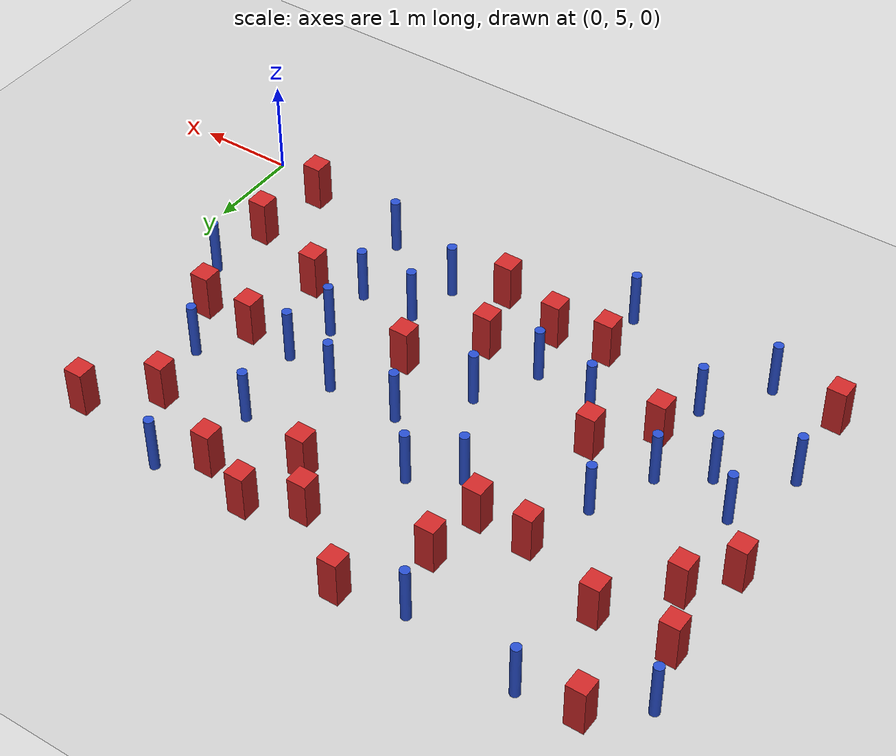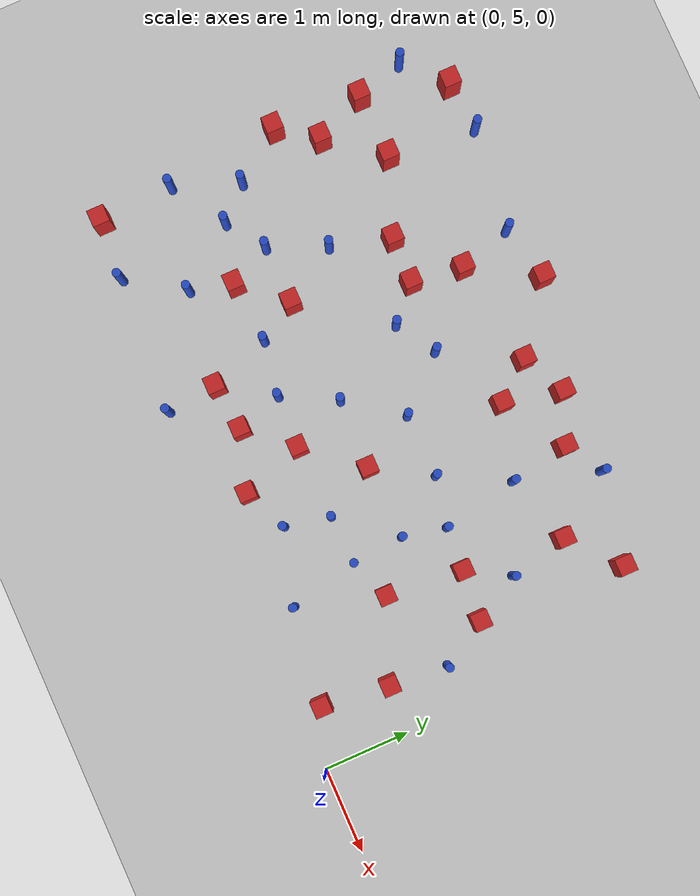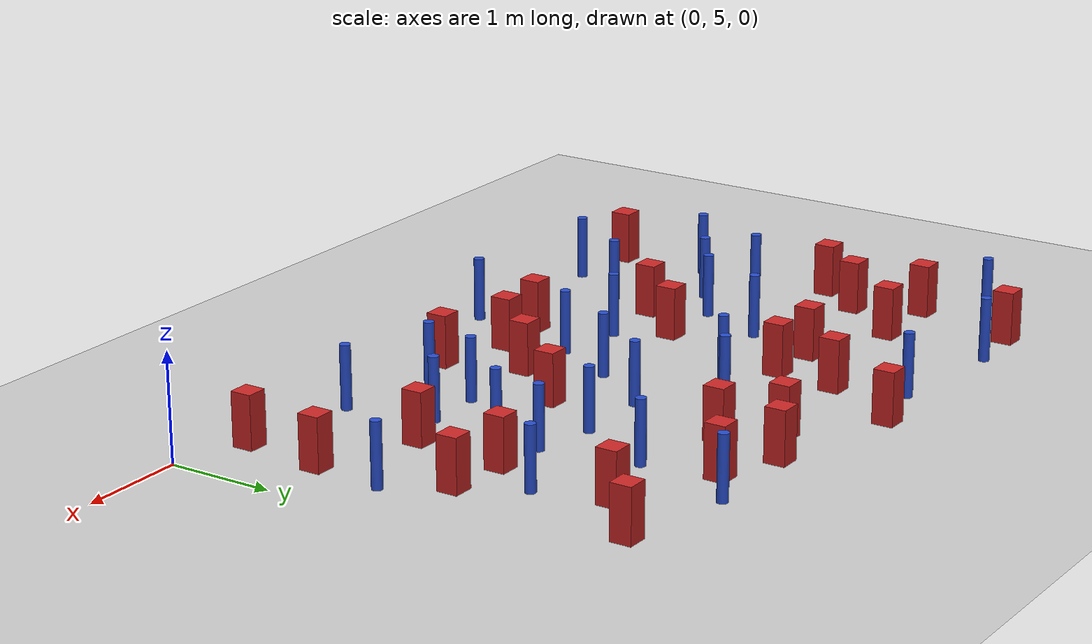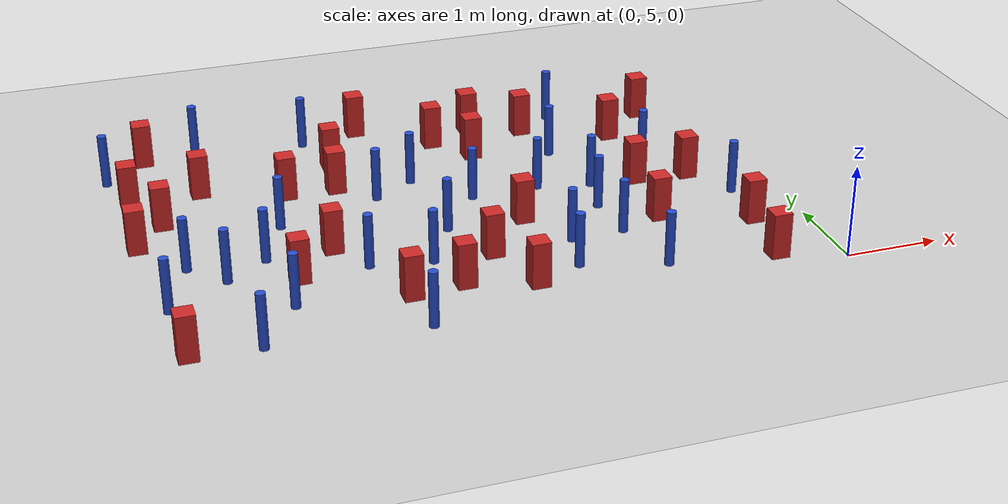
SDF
<sdf version="1.6">
 <world name="default">
  <model name="ground_plane">
   <static>1</static>
   <link name="link">
    <collision name="collision">
     <geometry><plane><normal>0 0 1</normal><size>100 100</size></plane></geometry>
     <surface><friction><ode><mu>100</mu><mu2>50</mu2></ode></friction></surface>
    </collision>
    <visual name="visual">
     <cast_shadows>0</cast_shadows>
     <geometry><plane><normal>0 0 1</normal><size>100 100</size></plane></geometry>
     <material>
      <ambient>1.0 1.0 1.0 1.0</ambient>
      <diffuse>0.8 0.8 0.8 1.0</diffuse>
      <specular>0.01 0.01 0.01 1.000000</specular>
     </material>
    </visual>
   </link>
  </model>
  <model name="square_post_obstacle1">
   <static>true</static>
   <pose>-4.43478799256 5.60635360272 -6.11067671241e-07 -5.50515727128e-06 -8.79689657224e-07 2.37013304536e-05</pose>
   <link name="link">
    <pose>0 0 0.25 0 -0 0</pose>
    <inertial>
     <mass>100</mass>
     <inertia>
      <ixx>0.166667</ixx>
      <ixy>0</ixy>
      <ixz>0</ixz>
      <iyy>0.166667</iyy>
      <iyz>0</iyz>
      <izz>0.166667</izz>
     </inertia>
    </inertial>
    <collision name="collision"><geometry><box><size>.2 .2 .5</size></box></geometry></collision>
    <visual name="visual">
     <geometry><box><size>.2 .2 .5</size></box></geometry>
     <material>
      <script><name>Gazebo/Red</name><uri>file://media/materials/scripts/gazebo.material</uri></script>
     </material>
    </visual>
   </link>
  </model>
  <model name="square_post_obstacle12">
   <static>true</static>
   <pose>-6.0545264636 8.45145739895 -6.11067671241e-07 -5.50515727128e-06 -8.79689657224e-07 2.37013304536e-05</pose>
   <link name="link">
    <pose>0 0 0.25 0 -0 0</pose>
    <inertial>
     <mass>100</mass>
     <inertia>
      <ixx>0.166667</ixx>
      <ixy>0</ixy>
      <ixz>0</ixz>
      <iyy>0.166667</iyy>
      <iyz>0</iyz>
      <izz>0.166667</izz>
     </inertia>
    </inertial>
    <collision name="collision"><geometry><box><size>.2 .2 .5</size></box></geometry></collision>
    <visual name="visual">
     <geometry><box><size>.2 .2 .5</size></box></geometry>
     <material>
      <script><name>Gazebo/Red</name><uri>file://media/materials/scripts/gazebo.material</uri></script>
     </material>
    </visual>
   </link>
  </model>
  <model name="square_post_obstacle14">
   <static>true</static>
   <pose>-0.742302265317 8.96026885137 -6.11067671241e-07 -5.50515727128e-06 -8.79689657224e-07 2.37013304536e-05</pose>
   <link name="link">
    <pose>0 0 0.25 0 -0 0</pose>
    <inertial>
     <mass>100</mass>
     <inertia>
      <ixx>0.166667</ixx>
      <ixy>0</ixy>
      <ixz>0</ixz>
      <iyy>0.166667</iyy>
      <iyz>0</iyz>
      <izz>0.166667</izz>
     </inertia>
    </inertial>
    <collision name="collision"><geometry><box><size>.2 .2 .5</size></box></geometry></collision>
    <visual name="visual">
     <geometry><box><size>.2 .2 .5</size></box></geometry>
     <material>
      <script><name>Gazebo/Red</name><uri>file://media/materials/scripts/gazebo.material</uri></script>
     </material>
    </visual>
   </link>
  </model>
  <model name="pole_obstacle9">
   <static>true</static>
   <pose>-6.44895518481 6.81430109673 -9.47619616065e-06 5.49618799737e-07 2.36310414037e-07 -1.55090534814e-07</pose>
   <link name="link">
    <pose>0 0 0.3 0 -0 0</pose>
    <inertial>
     <mass>1</mass>
     <inertia><ixx>0.145833</ixx><ixy>0</ixy><ixz>0</ixz><iyy>0.145833</iyy><iyz>0</iyz><izz>0.125</izz></inertia>
    </inertial>
    <collision name="collision">
     <geometry><cylinder><radius>0.05</radius><length>.6</length></cylinder></geometry>
    </collision>
    <visual name="visual">
     <geometry><cylinder><radius>0.05</radius><length>.6</length></cylinder></geometry>
     <material>
      <script><name>Gazebo/Blue</name><uri>file://media/materials/scripts/gazebo.material</uri></script>
     </material>
    </visual>
   </link>
  </model>
  <model name="pole_obstacle18">
   <static>true</static>
   <pose>-5.98969069954 5.11843332999 -9.47619616065e-06 5.49618799737e-07 2.36310414037e-07 -1.55090534814e-07</pose>
   <link name="link">
    <pose>0 0 0.3 0 -0 0</pose>
    <inertial>
     <mass>1</mass>
     <inertia><ixx>0.145833</ixx><ixy>0</ixy><ixz>0</ixz><iyy>0.145833</iyy><iyz>0</iyz><izz>0.125</izz></inertia>
    </inertial>
    <collision name="collision">
     <geometry><cylinder><radius>0.05</radius><length>.6</length></cylinder></geometry>
    </collision>
    <visual name="visual">
     <geometry><cylinder><radius>0.05</radius><length>.6</length></cylinder></geometry>
     <material>
      <script><name>Gazebo/Blue</name><uri>file://media/materials/scripts/gazebo.material</uri></script>
     </material>
    </visual>
   </link>
  </model>
  <model name="square_post_obstacle32">
   <static>true</static>
   <pose>-5.16478531638 8.11404601556 -6.11067671241e-07 -5.50515727128e-06 -8.79689657224e-07 2.37013304536e-05</pose>
   <link name="link">
    <pose>0 0 0.25 0 -0 0</pose>
    <inertial>
     <mass>100</mass>
     <inertia>
      <ixx>0.166667</ixx>
      <ixy>0</ixy>
      <ixz>0</ixz>
      <iyy>0.166667</iyy>
      <iyz>0</iyz>
      <izz>0.166667</izz>
     </inertia>
    </inertial>
    <collision name="collision"><geometry><box><size>.2 .2 .5</size></box></geometry></collision>
    <visual name="visual">
     <geometry><box><size>.2 .2 .5</size></box></geometry>
     <material>
      <script><name>Gazebo/Red</name><uri>file://media/materials/scripts/gazebo.material</uri></script>
     </material>
    </visual>
   </link>
  </model>
  <model name="pole_obstacle30">
   <static>true</static>
   <pose>-4.7310915244 9.33867803937 -9.47619616065e-06 5.49618799737e-07 2.36310414065e-07 -1.55090534796e-07</pose>
   <link name="link">
    <pose>0 0 0.3 0 -0 0</pose>
    <inertial>
     <mass>1</mass>
     <inertia><ixx>0.145833</ixx><ixy>0</ixy><ixz>0</ixz><iyy>0.145833</iyy><iyz>0</iyz><izz>0.125</izz></inertia>
    </inertial>
    <collision name="collision">
     <geometry><cylinder><radius>0.05</radius><length>.6</length></cylinder></geometry>
    </collision>
    <visual name="visual">
     <geometry><cylinder><radius>0.05</radius><length>.6</length></cylinder></geometry>
     <material>
      <script><name>Gazebo/Blue</name><uri>file://media/materials/scripts/gazebo.material</uri></script>
     </material>
    </visual>
   </link>
  </model>
  <model name="pole_obstacle43">
   <static>true</static>
   <pose>-0.511405981008 6.71954454775 -9.47619616065e-06 5.49618799737e-07 2.36310414069e-07 -1.55090534794e-07</pose>
   <link name="link">
    <pose>0 0 0.3 0 -0 0</pose>
    <inertial>
     <mass>1</mass>
     <inertia><ixx>0.145833</ixx><ixy>0</ixy><ixz>0</ixz><iyy>0.145833</iyy><iyz>0</iyz><izz>0.125</izz></inertia>
    </inertial>
    <collision name="collision">
     <geometry><cylinder><radius>0.05</radius><length>.6</length></cylinder></geometry>
    </collision>
    <visual name="visual">
     <geometry><cylinder><radius>0.05</radius><length>.6</length></cylinder></geometry>
     <material>
      <script><name>Gazebo/Blue</name><uri>file://media/materials/scripts/gazebo.material</uri></script>
     </material>
    </visual>
   </link>
  </model>
  <model name="square_post_obstacle46">
   <static>true</static>
   <pose>-3.42905283456 6.17475066229 -6.11067671241e-07 -5.50515727128e-06 -8.79689657224e-07 2.37013304536e-05</pose>
   <link name="link">
    <pose>0 0 0.25 0 -0 0</pose>
    <inertial>
     <mass>100</mass>
     <inertia>
      <ixx>0.166667</ixx>
      <ixy>0</ixy>
      <ixz>0</ixz>
      <iyy>0.166667</iyy>
      <iyz>0</iyz>
      <izz>0.166667</izz>
     </inertia>
    </inertial>
    <collision name="collision"><geometry><box><size>.2 .2 .5</size></box></geometry></collision>
    <visual name="visual">
     <geometry><box><size>.2 .2 .5</size></box></geometry>
     <material>
      <script><name>Gazebo/Red</name><uri>file://media/materials/scripts/gazebo.material</uri></script>
     </material>
    </visual>
   </link>
  </model>
  <model name="pole_obstacle46">
   <static>true</static>
   <pose>-4.38601492608 5.00733480028 -9.47619616065e-06 5.49618799737e-07 2.36310414037e-07 -1.55090534814e-07</pose>
   <link name="link">
    <pose>0 0 0.3 0 -0 0</pose>
    <inertial>
     <mass>1</mass>
     <inertia><ixx>0.145833</ixx><ixy>0</ixy><ixz>0</ixz><iyy>0.145833</iyy><iyz>0</iyz><izz>0.125</izz></inertia>
    </inertial>
    <collision name="collision">
     <geometry><cylinder><radius>0.05</radius><length>.6</length></cylinder></geometry>
    </collision>
    <visual name="visual">
     <geometry><cylinder><radius>0.05</radius><length>.6</length></cylinder></geometry>
     <material>
      <script><name>Gazebo/Blue</name><uri>file://media/materials/scripts/gazebo.material</uri></script>
     </material>
    </visual>
   </link>
  </model>
  <model name="square_post_obstacle51">
   <static>true</static>
   <pose>-2.89981858298 6.79808342777 -6.11067671241e-07 -5.50515727128e-06 -8.79689657224e-07 2.37013304536e-05</pose>
   <link name="link">
    <pose>0 0 0.25 0 -0 0</pose>
    <inertial>
     <mass>100</mass>
     <inertia>
      <ixx>0.166667</ixx>
      <ixy>0</ixy>
      <ixz>0</ixz>
      <iyy>0.166667</iyy>
      <iyz>0</iyz>
      <izz>0.166667</izz>
     </inertia>
    </inertial>
    <collision name="collision"><geometry><box><size>.2 .2 .5</size></box></geometry></collision>
    <visual name="visual">
     <geometry><box><size>.2 .2 .5</size></box></geometry>
     <material>
      <script><name>Gazebo/Red</name><uri>file://media/materials/scripts/gazebo.material</uri></script>
     </material>
    </visual>
   </link>
  </model>
  <model name="pole_obstacle56">
   <static>true</static>
   <pose>-3.25328708023 7.44785954091 -9.4761961606e-06 5.49618799729e-07 2.36310414006e-07 -1.55090534822e-07</pose>
   <link name="link">
    <pose>0 0 0.3 0 -0 0</pose>
    <inertial>
     <mass>1</mass>
     <inertia><ixx>0.145833</ixx><ixy>0</ixy><ixz>0</ixz><iyy>0.145833</iyy><iyz>0</iyz><izz>0.125</izz></inertia>
    </inertial>
    <collision name="collision">
     <geometry><cylinder><radius>0.05</radius><length>.6</length></cylinder></geometry>
    </collision>
    <visual name="visual">
     <geometry><cylinder><radius>0.05</radius><length>.6</length></cylinder></geometry>
     <material>
      <script><name>Gazebo/Blue</name><uri>file://media/materials/scripts/gazebo.material</uri></script>
     </material>
    </visual>
   </link>
  </model>
  <model name="pole_obstacle57">
   <static>true</static>
   <pose>-6.09919513137 6.45370293949 -9.47619616065e-06 5.49618799737e-07 2.36310414037e-07 -1.55090534814e-07</pose>
   <link name="link">
    <pose>0 0 0.3 0 -0 0</pose>
    <inertial>
     <mass>1</mass>
     <inertia><ixx>0.145833</ixx><ixy>0</ixy><ixz>0</ixz><iyy>0.145833</iyy><iyz>0</iyz><izz>0.125</izz></inertia>
    </inertial>
    <collision name="collision">
     <geometry><cylinder><radius>0.05</radius><length>.6</length></cylinder></geometry>
    </collision>
    <visual name="visual">
     <geometry><cylinder><radius>0.05</radius><length>.6</length></cylinder></geometry>
     <material>
      <script><name>Gazebo/Blue</name><uri>file://media/materials/scripts/gazebo.material</uri></script>
     </material>
    </visual>
   </link>
  </model>
  <model name="pole_obstacle63">
   <static>true</static>
   <pose>-2.56056381155 6.20164306159 -9.47619616065e-06 5.49618799738e-07 2.3631041406e-07 -1.55090534801e-07</pose>
   <link name="link">
    <pose>0 0 0.3 0 -0 0</pose>
    <inertial>
     <mass>1</mass>
     <inertia><ixx>0.145833</ixx><ixy>0</ixy><ixz>0</ixz><iyy>0.145833</iyy><iyz>0</iyz><izz>0.125</izz></inertia>
    </inertial>
    <collision name="collision">
     <geometry><cylinder><radius>0.05</radius><length>.6</length></cylinder></geometry>
    </collision>
    <visual name="visual">
     <geometry><cylinder><radius>0.05</radius><length>.6</length></cylinder></geometry>
     <material>
      <script><name>Gazebo/Blue</name><uri>file://media/materials/scripts/gazebo.material</uri></script>
     </material>
    </visual>
   </link>
  </model>
  <model name="pole_obstacle64">
   <static>true</static>
   <pose>-2.67398971827 5.67075251357 -9.47619616065e-06 5.49618799738e-07 2.3631041406e-07 -1.55090534801e-07</pose>
   <link name="link">
    <pose>0 0 0.3 0 -0 0</pose>
    <inertial>
     <mass>1</mass>
     <inertia><ixx>0.145833</ixx><ixy>0</ixy><ixz>0</ixz><iyy>0.145833</iyy><iyz>0</iyz><izz>0.125</izz></inertia>
    </inertial>
    <collision name="collision">
     <geometry><cylinder><radius>0.05</radius><length>.6</length></cylinder></geometry>
    </collision>
    <visual name="visual">
     <geometry><cylinder><radius>0.05</radius><length>.6</length></cylinder></geometry>
     <material>
      <script><name>Gazebo/Blue</name><uri>file://media/materials/scripts/gazebo.material</uri></script>
     </material>
    </visual>
   </link>
  </model>
  <model name="pole_obstacle66">
   <static>true</static>
   <pose>-1.80396668844 5.4139811328 -9.47619616065e-06 5.49618799737e-07 2.36310414061e-07 -1.550905348e-07</pose>
   <link name="link">
    <pose>0 0 0.3 0 -0 0</pose>
    <inertial>
     <mass>1</mass>
     <inertia><ixx>0.145833</ixx><ixy>0</ixy><ixz>0</ixz><iyy>0.145833</iyy><iyz>0</iyz><izz>0.125</izz></inertia>
    </inertial>
    <collision name="collision">
     <geometry><cylinder><radius>0.05</radius><length>.6</length></cylinder></geometry>
    </collision>
    <visual name="visual">
     <geometry><cylinder><radius>0.05</radius><length>.6</length></cylinder></geometry>
     <material>
      <script><name>Gazebo/Blue</name><uri>file://media/materials/scripts/gazebo.material</uri></script>
     </material>
    </visual>
   </link>
  </model>
  <model name="pole_obstacle67">
   <static>true</static>
   <pose>-6.73562619671 6.05208099698 -9.47619616065e-06 5.49618799737e-07 2.36310414037e-07 -1.55090534814e-07</pose>
   <link name="link">
    <pose>0 0 0.3 0 -0 0</pose>
    <inertial>
     <mass>1</mass>
     <inertia><ixx>0.145833</ixx><ixy>0</ixy><ixz>0</ixz><iyy>0.145833</iyy><iyz>0</iyz><izz>0.125</izz></inertia>
    </inertial>
    <collision name="collision">
     <geometry><cylinder><radius>0.05</radius><length>.6</length></cylinder></geometry>
    </collision>
    <visual name="visual">
     <geometry><cylinder><radius>0.05</radius><length>.6</length></cylinder></geometry>
     <material>
      <script><name>Gazebo/Blue</name><uri>file://media/materials/scripts/gazebo.material</uri></script>
     </material>
    </visual>
   </link>
  </model>
  <model name="square_post_obstacle75">
   <static>true</static>
   <pose>-2.80260850887 9.14973458944 -6.11067671241e-07 -5.50515727128e-06 -8.79689657224e-07 2.37013304536e-05</pose>
   <link name="link">
    <pose>0 0 0.25 0 -0 0</pose>
    <inertial>
     <mass>100</mass>
     <inertia>
      <ixx>0.166667</ixx>
      <ixy>0</ixy>
      <ixz>0</ixz>
      <iyy>0.166667</iyy>
      <iyz>0</iyz>
      <izz>0.166667</izz>
     </inertia>
    </inertial>
    <collision name="collision"><geometry><box><size>.2 .2 .5</size></box></geometry></collision>
    <visual name="visual">
     <geometry><box><size>.2 .2 .5</size></box></geometry>
     <material>
      <script><name>Gazebo/Red</name><uri>file://media/materials/scripts/gazebo.material</uri></script>
     </material>
    </visual>
   </link>
  </model>
  <model name="square_post_obstacle77">
   <static>true</static>
   <pose>-5.40919212482 6.26537233215 -6.11067671241e-07 -5.50515727128e-06 -8.79689657224e-07 2.37013304536e-05</pose>
   <link name="link">
    <pose>0 0 0.25 0 -0 0</pose>
    <inertial>
     <mass>100</mass>
     <inertia>
      <ixx>0.166667</ixx>
      <ixy>0</ixy>
      <ixz>0</ixz>
      <iyy>0.166667</iyy>
      <iyz>0</iyz>
      <izz>0.166667</izz>
     </inertia>
    </inertial>
    <collision name="collision"><geometry><box><size>.2 .2 .5</size></box></geometry></collision>
    <visual name="visual">
     <geometry><box><size>.2 .2 .5</size></box></geometry>
     <material>
      <script><name>Gazebo/Red</name><uri>file://media/materials/scripts/gazebo.material</uri></script>
     </material>
    </visual>
   </link>
  </model>
  <model name="pole_obstacle83">
   <static>true</static>
   <pose>-4.68876361041 6.31352791029 -9.47619616065e-06 5.49618799737e-07 2.36310414037e-07 -1.55090534814e-07</pose>
   <link name="link">
    <pose>0 0 0.3 0 -0 0</pose>
    <inertial>
     <mass>1</mass>
     <inertia><ixx>0.145833</ixx><ixy>0</ixy><ixz>0</ixz><iyy>0.145833</iyy><iyz>0</iyz><izz>0.125</izz></inertia>
    </inertial>
    <collision name="collision">
     <geometry><cylinder><radius>0.05</radius><length>.6</length></cylinder></geometry>
    </collision>
    <visual name="visual">
     <geometry><cylinder><radius>0.05</radius><length>.6</length></cylinder></geometry>
     <material>
      <script><name>Gazebo/Blue</name><uri>file://media/materials/scripts/gazebo.material</uri></script>
     </material>
    </visual>
   </link>
  </model>
  <model name="pole_obstacle85">
   <static>true</static>
   <pose>-3.71606671292 6.82683311649 -9.47619616065e-06 5.49618799738e-07 2.3631041406e-07 -1.55090534801e-07</pose>
   <link name="link">
    <pose>0 0 0.3 0 -0 0</pose>
    <inertial>
     <mass>1</mass>
     <inertia><ixx>0.145833</ixx><ixy>0</ixy><ixz>0</ixz><iyy>0.145833</iyy><iyz>0</iyz><izz>0.125</izz></inertia>
    </inertial>
    <collision name="collision">
     <geometry><cylinder><radius>0.05</radius><length>.6</length></cylinder></geometry>
    </collision>
    <visual name="visual">
     <geometry><cylinder><radius>0.05</radius><length>.6</length></cylinder></geometry>
     <material>
      <script><name>Gazebo/Blue</name><uri>file://media/materials/scripts/gazebo.material</uri></script>
     </material>
    </visual>
   </link>
  </model>
  <model name="square_post_obstacle82">
   <static>true</static>
   <pose>-3.18641721964 5.44880730583 -6.11067671241e-07 -5.50515727128e-06 -8.79689657224e-07 2.37013304536e-05</pose>
   <link name="link">
    <pose>0 0 0.25 0 -0 0</pose>
    <inertial>
     <mass>100</mass>
     <inertia>
      <ixx>0.166667</ixx>
      <ixy>0</ixy>
      <ixz>0</ixz>
      <iyy>0.166667</iyy>
      <iyz>0</iyz>
      <izz>0.166667</izz>
     </inertia>
    </inertial>
    <collision name="collision"><geometry><box><size>.2 .2 .5</size></box></geometry></collision>
    <visual name="visual">
     <geometry><box><size>.2 .2 .5</size></box></geometry>
     <material>
      <script><name>Gazebo/Red</name><uri>file://media/materials/scripts/gazebo.material</uri></script>
     </material>
    </visual>
   </link>
  </model>
  <model name="pole_obstacle99">
   <static>true</static>
   <pose>-2.5056821882 7.46534544408 -9.47619616065e-06 5.49618799738e-07 2.3631041406e-07 -1.55090534801e-07</pose>
   <link name="link">
    <pose>0 0 0.3 0 -0 0</pose>
    <inertial>
     <mass>1</mass>
     <inertia><ixx>0.145833</ixx><ixy>0</ixy><ixz>0</ixz><iyy>0.145833</iyy><iyz>0</iyz><izz>0.125</izz></inertia>
    </inertial>
    <collision name="collision">
     <geometry><cylinder><radius>0.05</radius><length>.6</length></cylinder></geometry>
    </collision>
    <visual name="visual">
     <geometry><cylinder><radius>0.05</radius><length>.6</length></cylinder></geometry>
     <material>
      <script><name>Gazebo/Blue</name><uri>file://media/materials/scripts/gazebo.material</uri></script>
     </material>
    </visual>
   </link>
  </model>
  <model name="pole_obstacle103">
   <static>true</static>
   <pose>-5.9457717845 9.49427658453 -9.47619616065e-06 5.49618799737e-07 2.36310414065e-07 -1.55090534796e-07</pose>
   <link name="link">
    <pose>0 0 0.3 0 -0 0</pose>
    <inertial>
     <mass>1</mass>
     <inertia><ixx>0.145833</ixx><ixy>0</ixy><ixz>0</ixz><iyy>0.145833</iyy><iyz>0</iyz><izz>0.125</izz></inertia>
    </inertial>
    <collision name="collision">
     <geometry><cylinder><radius>0.05</radius><length>.6</length></cylinder></geometry>
    </collision>
    <visual name="visual">
     <geometry><cylinder><radius>0.05</radius><length>.6</length></cylinder></geometry>
     <material>
      <script><name>Gazebo/Blue</name><uri>file://media/materials/scripts/gazebo.material</uri></script>
     </material>
    </visual>
   </link>
  </model>
  <model name="square_post_obstacle92">
   <static>true</static>
   <pose>-3.31038383051 8.90282828501 -6.11067671241e-07 -5.50515727128e-06 -8.79689657224e-07 2.37013304536e-05</pose>
   <link name="link">
    <pose>0 0 0.25 0 -0 0</pose>
    <inertial>
     <mass>100</mass>
     <inertia>
      <ixx>0.166667</ixx>
      <ixy>0</ixy>
      <ixz>0</ixz>
      <iyy>0.166667</iyy>
      <iyz>0</iyz>
      <izz>0.166667</izz>
     </inertia>
    </inertial>
    <collision name="collision"><geometry><box><size>.2 .2 .5</size></box></geometry></collision>
    <visual name="visual">
     <geometry><box><size>.2 .2 .5</size></box></geometry>
     <material>
      <script><name>Gazebo/Red</name><uri>file://media/materials/scripts/gazebo.material</uri></script>
     </material>
    </visual>
   </link>
  </model>
  <model name="square_post_obstacle94">
   <static>true</static>
   <pose>-2.22548112345 8.91783704091 -6.11067671241e-07 -5.50515727128e-06 -8.79689657224e-07 2.37013304536e-05</pose>
   <link name="link">
    <pose>0 0 0.25 0 -0 0</pose>
    <inertial>
     <mass>100</mass>
     <inertia>
      <ixx>0.166667</ixx>
      <ixy>0</ixy>
      <ixz>0</ixz>
      <iyy>0.166667</iyy>
      <iyz>0</iyz>
      <izz>0.166667</izz>
     </inertia>
    </inertial>
    <collision name="collision"><geometry><box><size>.2 .2 .5</size></box></geometry></collision>
    <visual name="visual">
     <geometry><box><size>.2 .2 .5</size></box></geometry>
     <material>
      <script><name>Gazebo/Red</name><uri>file://media/materials/scripts/gazebo.material</uri></script>
     </material>
    </visual>
   </link>
  </model>
  <model name="square_post_obstacle100">
   <static>true</static>
   <pose>-4.54385470908 8.70519966103 -6.11067671241e-07 -5.50515727128e-06 -8.79689657224e-07 2.37013304536e-05</pose>
   <link name="link">
    <pose>0 0 0.25 0 -0 0</pose>
    <inertial>
     <mass>100</mass>
     <inertia>
      <ixx>0.166667</ixx>
      <ixy>0</ixy>
      <ixz>0</ixz>
      <iyy>0.166667</iyy>
      <iyz>0</iyz>
      <izz>0.166667</izz>
     </inertia>
    </inertial>
    <collision name="collision"><geometry><box><size>.2 .2 .5</size></box></geometry></collision>
    <visual name="visual">
     <geometry><box><size>.2 .2 .5</size></box></geometry>
     <material>
      <script><name>Gazebo/Red</name><uri>file://media/materials/scripts/gazebo.material</uri></script>
     </material>
    </visual>
   </link>
  </model>
  <model name="pole_obstacle116">
   <static>true</static>
   <pose>-2.03106829639 6.83432647824 -9.47619616065e-06 5.49618799737e-07 2.36310414067e-07 -1.55090534796e-07</pose>
   <link name="link">
    <pose>0 0 0.3 0 -0 0</pose>
    <inertial>
     <mass>1</mass>
     <inertia><ixx>0.145833</ixx><ixy>0</ixy><ixz>0</ixz><iyy>0.145833</iyy><iyz>0</iyz><izz>0.125</izz></inertia>
    </inertial>
    <collision name="collision">
     <geometry><cylinder><radius>0.05</radius><length>.6</length></cylinder></geometry>
    </collision>
    <visual name="visual">
     <geometry><cylinder><radius>0.05</radius><length>.6</length></cylinder></geometry>
     <material>
      <script><name>Gazebo/Blue</name><uri>file://media/materials/scripts/gazebo.material</uri></script>
     </material>
    </visual>
   </link>
  </model>
  <model name="pole_obstacle118">
   <static>true</static>
   <pose>-3.79311296094 8.03465573996 -9.47619616065e-06 5.49618799737e-07 2.36310414075e-07 -1.55090534792e-07</pose>
   <link name="link">
    <pose>0 0 0.3 0 -0 0</pose>
    <inertial>
     <mass>1</mass>
     <inertia><ixx>0.145833</ixx><ixy>0</ixy><ixz>0</ixz><iyy>0.145833</iyy><iyz>0</iyz><izz>0.125</izz></inertia>
    </inertial>
    <collision name="collision">
     <geometry><cylinder><radius>0.05</radius><length>.6</length></cylinder></geometry>
    </collision>
    <visual name="visual">
     <geometry><cylinder><radius>0.05</radius><length>.6</length></cylinder></geometry>
     <material>
      <script><name>Gazebo/Blue</name><uri>file://media/materials/scripts/gazebo.material</uri></script>
     </material>
    </visual>
   </link>
  </model>
  <model name="pole_obstacle120">
   <static>true</static>
   <pose>-5.37259853072 7.41952004419 -9.47619616065e-06 5.49618799737e-07 2.36310414037e-07 -1.55090534814e-07</pose>
   <link name="link">
    <pose>0 0 0.3 0 -0 0</pose>
    <inertial>
     <mass>1</mass>
     <inertia><ixx>0.145833</ixx><ixy>0</ixy><ixz>0</ixz><iyy>0.145833</iyy><iyz>0</iyz><izz>0.125</izz></inertia>
    </inertial>
    <collision name="collision">
     <geometry><cylinder><radius>0.05</radius><length>.6</length></cylinder></geometry>
    </collision>
    <visual name="visual">
     <geometry><cylinder><radius>0.05</radius><length>.6</length></cylinder></geometry>
     <material>
      <script><name>Gazebo/Blue</name><uri>file://media/materials/scripts/gazebo.material</uri></script>
     </material>
    </visual>
   </link>
  </model>
  <model name="pole_obstacle123">
   <static>true</static>
   <pose>-4.04515758894 6.20432769611 -9.47619616065e-06 5.49618799737e-07 2.36310414031e-07 -1.55090534817e-07</pose>
   <link name="link">
    <pose>0 0 0.3 0 -0 0</pose>
    <inertial>
     <mass>1</mass>
     <inertia><ixx>0.145833</ixx><ixy>0</ixy><ixz>0</ixz><iyy>0.145833</iyy><iyz>0</iyz><izz>0.125</izz></inertia>
    </inertial>
    <collision name="collision">
     <geometry><cylinder><radius>0.05</radius><length>.6</length></cylinder></geometry>
    </collision>
    <visual name="visual">
     <geometry><cylinder><radius>0.05</radius><length>.6</length></cylinder></geometry>
     <material>
      <script><name>Gazebo/Blue</name><uri>file://media/materials/scripts/gazebo.material</uri></script>
     </material>
    </visual>
   </link>
  </model>
  <model name="pole_obstacle130">
   <static>true</static>
   <pose>-5.55603551851 5.76548208867 -9.47619616065e-06 5.49618799737e-07 2.36310414037e-07 -1.55090534814e-07</pose>
   <link name="link">
    <pose>0 0 0.3 0 -0 0</pose>
    <inertial>
     <mass>1</mass>
     <inertia><ixx>0.145833</ixx><ixy>0</ixy><ixz>0</ixz><iyy>0.145833</iyy><iyz>0</iyz><izz>0.125</izz></inertia>
    </inertial>
    <collision name="collision">
     <geometry><cylinder><radius>0.05</radius><length>.6</length></cylinder></geometry>
    </collision>
    <visual name="visual">
     <geometry><cylinder><radius>0.05</radius><length>.6</length></cylinder></geometry>
     <material>
      <script><name>Gazebo/Blue</name><uri>file://media/materials/scripts/gazebo.material</uri></script>
     </material>
    </visual>
   </link>
  </model>
  <model name="pole_obstacle136">
   <static>true</static>
   <pose>-1.80038776176 9.19298654984 -9.47619616065e-06 5.49618799737e-07 2.36310414046e-07 -1.55090534809e-07</pose>
   <link name="link">
    <pose>0 0 0.3 0 -0 0</pose>
    <inertial>
     <mass>1</mass>
     <inertia><ixx>0.145833</ixx><ixy>0</ixy><ixz>0</ixz><iyy>0.145833</iyy><iyz>0</iyz><izz>0.125</izz></inertia>
    </inertial>
    <collision name="collision">
     <geometry><cylinder><radius>0.05</radius><length>.6</length></cylinder></geometry>
    </collision>
    <visual name="visual">
     <geometry><cylinder><radius>0.05</radius><length>.6</length></cylinder></geometry>
     <material>
      <script><name>Gazebo/Blue</name><uri>file://media/materials/scripts/gazebo.material</uri></script>
     </material>
    </visual>
   </link>
  </model>
  <model name="pole_obstacle139">
   <static>true</static>
   <pose>-2.09950263512 8.23191709707 -9.4761961606e-06 5.49618799729e-07 2.36310414e-07 -1.55090534824e-07</pose>
   <link name="link">
    <pose>0 0 0.3 0 -0 0</pose>
    <inertial>
     <mass>1</mass>
     <inertia><ixx>0.145833</ixx><ixy>0</ixy><ixz>0</ixz><iyy>0.145833</iyy><iyz>0</iyz><izz>0.125</izz></inertia>
    </inertial>
    <collision name="collision">
     <geometry><cylinder><radius>0.05</radius><length>.6</length></cylinder></geometry>
    </collision>
    <visual name="visual">
     <geometry><cylinder><radius>0.05</radius><length>.6</length></cylinder></geometry>
     <material>
      <script><name>Gazebo/Blue</name><uri>file://media/materials/scripts/gazebo.material</uri></script>
     </material>
    </visual>
   </link>
  </model>
  <model name="square_post_obstacle125">
   <static>true</static>
   <pose>-4.9621671914 6.7661242826 -6.11067671241e-07 -5.50515727128e-06 -8.79689657224e-07 2.37013304536e-05</pose>
   <link name="link">
    <pose>0 0 0.25 0 -0 0</pose>
    <inertial>
     <mass>100</mass>
     <inertia>
      <ixx>0.166667</ixx>
      <ixy>0</ixy>
      <ixz>0</ixz>
      <iyy>0.166667</iyy>
      <iyz>0</iyz>
      <izz>0.166667</izz>
     </inertia>
    </inertial>
    <collision name="collision"><geometry><box><size>.2 .2 .5</size></box></geometry></collision>
    <visual name="visual">
     <geometry><box><size>.2 .2 .5</size></box></geometry>
     <material>
      <script><name>Gazebo/Red</name><uri>file://media/materials/scripts/gazebo.material</uri></script>
     </material>
    </visual>
   </link>
  </model>
  <model name="square_post_obstacle132">
   <static>true</static>
   <pose>-6.81452076863 8.43178630671 -6.11067671241e-07 -5.50515727128e-06 -8.79689657224e-07 2.37013304536e-05</pose>
   <link name="link">
    <pose>0 0 0.25 0 -0 0</pose>
    <inertial>
     <mass>100</mass>
     <inertia>
      <ixx>0.166667</ixx>
      <ixy>0</ixy>
      <ixz>0</ixz>
      <iyy>0.166667</iyy>
      <iyz>0</iyz>
      <izz>0.166667</izz>
     </inertia>
    </inertial>
    <collision name="collision"><geometry><box><size>.2 .2 .5</size></box></geometry></collision>
    <visual name="visual">
     <geometry><box><size>.2 .2 .5</size></box></geometry>
     <material>
      <script><name>Gazebo/Red</name><uri>file://media/materials/scripts/gazebo.material</uri></script>
     </material>
    </visual>
   </link>
  </model>
  <model name="square_post_obstacle139">
   <static>true</static>
   <pose>-0.83256341877 7.24919146022 -6.11067671241e-07 -5.50515727128e-06 -8.79689657224e-07 2.37013304536e-05</pose>
   <link name="link">
    <pose>0 0 0.25 0 -0 0</pose>
    <inertial>
     <mass>100</mass>
     <inertia>
      <ixx>0.166667</ixx>
      <ixy>0</ixy>
      <ixz>0</ixz>
      <iyy>0.166667</iyy>
      <iyz>0</iyz>
      <izz>0.166667</izz>
     </inertia>
    </inertial>
    <collision name="collision"><geometry><box><size>.2 .2 .5</size></box></geometry></collision>
    <visual name="visual">
     <geometry><box><size>.2 .2 .5</size></box></geometry>
     <material>
      <script><name>Gazebo/Red</name><uri>file://media/materials/scripts/gazebo.material</uri></script>
     </material>
    </visual>
   </link>
  </model>
  <model name="pole_obstacle152">
   <static>true</static>
   <pose>-1.12913950508 7.79714186715 -9.47619616065e-06 5.49618799737e-07 2.36310414061e-07 -1.550905348e-07</pose>
   <link name="link">
    <pose>0 0 0.3 0 -0 0</pose>
    <inertial>
     <mass>1</mass>
     <inertia><ixx>0.145833</ixx><ixy>0</ixy><ixz>0</ixz><iyy>0.145833</iyy><iyz>0</iyz><izz>0.125</izz></inertia>
    </inertial>
    <collision name="collision">
     <geometry><cylinder><radius>0.05</radius><length>.6</length></cylinder></geometry>
    </collision>
    <visual name="visual">
     <geometry><cylinder><radius>0.05</radius><length>.6</length></cylinder></geometry>
     <material>
      <script><name>Gazebo/Blue</name><uri>file://media/materials/scripts/gazebo.material</uri></script>
     </material>
    </visual>
   </link>
  </model>
  <model name="pole_obstacle160">
   <static>true</static>
   <pose>-5.65464309851 6.75757261515 -9.47619616065e-06 5.49618799737e-07 2.36310414037e-07 -1.55090534814e-07</pose>
   <link name="link">
    <pose>0 0 0.3 0 -0 0</pose>
    <inertial>
     <mass>1</mass>
     <inertia><ixx>0.145833</ixx><ixy>0</ixy><ixz>0</ixz><iyy>0.145833</iyy><iyz>0</iyz><izz>0.125</izz></inertia>
    </inertial>
    <collision name="collision">
     <geometry><cylinder><radius>0.05</radius><length>.6</length></cylinder></geometry>
    </collision>
    <visual name="visual">
     <geometry><cylinder><radius>0.05</radius><length>.6</length></cylinder></geometry>
     <material>
      <script><name>Gazebo/Blue</name><uri>file://media/materials/scripts/gazebo.material</uri></script>
     </material>
    </visual>
   </link>
  </model>
  <model name="square_post_obstacle160">
   <static>true</static>
   <pose>-4.62366881049 8.09767568304 -6.11067671241e-07 -5.50515727128e-06 -8.79689657224e-07 2.37013304536e-05</pose>
   <link name="link">
    <pose>0 0 0.25 0 -0 0</pose>
    <inertial>
     <mass>100</mass>
     <inertia>
      <ixx>0.166667</ixx>
      <ixy>0</ixy>
      <ixz>0</ixz>
      <iyy>0.166667</iyy>
      <iyz>0</iyz>
      <izz>0.166667</izz>
     </inertia>
    </inertial>
    <collision name="collision"><geometry><box><size>.2 .2 .5</size></box></geometry></collision>
    <visual name="visual">
     <geometry><box><size>.2 .2 .5</size></box></geometry>
     <material>
      <script><name>Gazebo/Red</name><uri>file://media/materials/scripts/gazebo.material</uri></script>
     </material>
    </visual>
   </link>
  </model>
  <model name="square_post_obstacle165">
   <static>true</static>
   <pose>-1.50845739638 6.40658729159 -6.11067671241e-07 -5.50515727128e-06 -8.79689657224e-07 2.37013304536e-05</pose>
   <link name="link">
    <pose>0 0 0.25 0 -0 0</pose>
    <inertial>
     <mass>100</mass>
     <inertia>
      <ixx>0.166667</ixx>
      <ixy>0</ixy>
      <ixz>0</ixz>
      <iyy>0.166667</iyy>
      <iyz>0</iyz>
      <izz>0.166667</izz>
     </inertia>
    </inertial>
    <collision name="collision"><geometry><box><size>.2 .2 .5</size></box></geometry></collision>
    <visual name="visual">
     <geometry><box><size>.2 .2 .5</size></box></geometry>
     <material>
      <script><name>Gazebo/Red</name><uri>file://media/materials/scripts/gazebo.material</uri></script>
     </material>
    </visual>
   </link>
  </model>
  <model name="square_post_obstacle166">
   <static>true</static>
   <pose>-0.586438119489 6.03965726481 -6.11067671241e-07 -5.50515727128e-06 -8.79689657224e-07 2.37013304536e-05</pose>
   <link name="link">
    <pose>0 0 0.25 0 -0 0</pose>
    <inertial>
     <mass>100</mass>
     <inertia>
      <ixx>0.166667</ixx>
      <ixy>0</ixy>
      <ixz>0</ixz>
      <iyy>0.166667</iyy>
      <iyz>0</iyz>
      <izz>0.166667</izz>
     </inertia>
    </inertial>
    <collision name="collision"><geometry><box><size>.2 .2 .5</size></box></geometry></collision>
    <visual name="visual">
     <geometry><box><size>.2 .2 .5</size></box></geometry>
     <material>
      <script><name>Gazebo/Red</name><uri>file://media/materials/scripts/gazebo.material</uri></script>
     </material>
    </visual>
   </link>
  </model>
  <model name="square_post_obstacle169">
   <static>true</static>
   <pose>-1.29398861735 8.47350390292 -6.11067671241e-07 -5.50515727128e-06 -8.79689657224e-07 2.37013304536e-05</pose>
   <link name="link">
    <pose>0 0 0.25 0 -0 0</pose>
    <inertial>
     <mass>100</mass>
     <inertia>
      <ixx>0.166667</ixx>
      <ixy>0</ixy>
      <ixz>0</ixz>
      <iyy>0.166667</iyy>
      <iyz>0</iyz>
      <izz>0.166667</izz>
     </inertia>
    </inertial>
    <collision name="collision"><geometry><box><size>.2 .2 .5</size></box></geometry></collision>
    <visual name="visual">
     <geometry><box><size>.2 .2 .5</size></box></geometry>
     <material>
      <script><name>Gazebo/Red</name><uri>file://media/materials/scripts/gazebo.material</uri></script>
     </material>
    </visual>
   </link>
  </model>
  <model name="square_post_obstacle178">
   <static>true</static>
   <pose>-6.68574079676 5.17872096993 -6.11067671241e-07 -5.50515727128e-06 -8.79689657224e-07 2.37013304536e-05</pose>
   <link name="link">
    <pose>0 0 0.25 0 -0 0</pose>
    <inertial>
     <mass>100</mass>
     <inertia>
      <ixx>0.166667</ixx>
      <ixy>0</ixy>
      <ixz>0</ixz>
      <iyy>0.166667</iyy>
      <iyz>0</iyz>
      <izz>0.166667</izz>
     </inertia>
    </inertial>
    <collision name="collision"><geometry><box><size>.2 .2 .5</size></box></geometry></collision>
    <visual name="visual">
     <geometry><box><size>.2 .2 .5</size></box></geometry>
     <material>
      <script><name>Gazebo/Red</name><uri>file://media/materials/scripts/gazebo.material</uri></script>
     </material>
    </visual>
   </link>
  </model>
  <model name="square_post_obstacle180">
   <static>true</static>
   <pose>-6.53593385193 9.42989527644 -6.11067671241e-07 -5.50515727128e-06 -8.79689657224e-07 2.37013304536e-05</pose>
   <link name="link">
    <pose>0 0 0.25 0 -0 0</pose>
    <inertial>
     <mass>100</mass>
     <inertia>
      <ixx>0.166667</ixx>
      <ixy>0</ixy>
      <ixz>0</ixz>
      <iyy>0.166667</iyy>
      <iyz>0</iyz>
      <izz>0.166667</izz>
     </inertia>
    </inertial>
    <collision name="collision"><geometry><box><size>.2 .2 .5</size></box></geometry></collision>
    <visual name="visual">
     <geometry><box><size>.2 .2 .5</size></box></geometry>
     <material>
      <script><name>Gazebo/Red</name><uri>file://media/materials/scripts/gazebo.material</uri></script>
     </material>
    </visual>
   </link>
  </model>
  <model name="square_post_obstacle182">
   <static>true</static>
   <pose>-6.54732057867 7.82963659401 -6.11067671241e-07 -5.50515727128e-06 -8.79689657224e-07 2.37013304536e-05</pose>
   <link name="link">
    <pose>0 0 0.25 0 -0 0</pose>
    <inertial>
     <mass>100</mass>
     <inertia>
      <ixx>0.166667</ixx>
      <ixy>0</ixy>
      <ixz>0</ixz>
      <iyy>0.166667</iyy>
      <iyz>0</iyz>
      <izz>0.166667</izz>
     </inertia>
    </inertial>
    <collision name="collision"><geometry><box><size>.2 .2 .5</size></box></geometry></collision>
    <visual name="visual">
     <geometry><box><size>.2 .2 .5</size></box></geometry>
     <material>
      <script><name>Gazebo/Red</name><uri>file://media/materials/scripts/gazebo.material</uri></script>
     </material>
    </visual>
   </link>
  </model>
  <model name="square_post_obstacle203">
   <static>true</static>
   <pose>-1.41895652283 7.3030932321 -6.11067671241e-07 -5.50515727128e-06 -8.79689657224e-07 2.37013304536e-05</pose>
   <link name="link">
    <pose>0 0 0.25 0 -0 0</pose>
    <inertial>
     <mass>100</mass>
     <inertia>
      <ixx>0.166667</ixx>
      <ixy>0</ixy>
      <ixz>0</ixz>
      <iyy>0.166667</iyy>
      <iyz>0</iyz>
      <izz>0.166667</izz>
     </inertia>
    </inertial>
    <collision name="collision"><geometry><box><size>.2 .2 .5</size></box></geometry></collision>
    <visual name="visual">
     <geometry><box><size>.2 .2 .5</size></box></geometry>
     <material>
      <script><name>Gazebo/Red</name><uri>file://media/materials/scripts/gazebo.material</uri></script>
     </material>
    </visual>
   </link>
  </model>
  <model name="pole_obstacle192">
   <static>true</static>
   <pose>-1.98244508967 6.22435674537 -9.47619616065e-06 5.49618799737e-07 2.36310414064e-07 -1.55090534797e-07</pose>
   <link name="link">
    <pose>0 0 0.3 0 -0 0</pose>
    <inertial>
     <mass>1</mass>
     <inertia><ixx>0.145833</ixx><ixy>0</ixy><ixz>0</ixz><iyy>0.145833</iyy><iyz>0</iyz><izz>0.125</izz></inertia>
    </inertial>
    <collision name="collision">
     <geometry><cylinder><radius>0.05</radius><length>.6</length></cylinder></geometry>
    </collision>
    <visual name="visual">
     <geometry><cylinder><radius>0.05</radius><length>.6</length></cylinder></geometry>
     <material>
      <script><name>Gazebo/Blue</name><uri>file://media/materials/scripts/gazebo.material</uri></script>
     </material>
    </visual>
   </link>
  </model>
  <model name="pole_obstacle193">
   <static>true</static>
   <pose>-4.2475421838 7.75158940184 -9.47619616065e-06 5.49618799737e-07 2.36310414037e-07 -1.55090534814e-07</pose>
   <link name="link">
    <pose>0 0 0.3 0 -0 0</pose>
    <inertial>
     <mass>1</mass>
     <inertia><ixx>0.145833</ixx><ixy>0</ixy><ixz>0</ixz><iyy>0.145833</iyy><iyz>0</iyz><izz>0.125</izz></inertia>
    </inertial>
    <collision name="collision">
     <geometry><cylinder><radius>0.05</radius><length>.6</length></cylinder></geometry>
    </collision>
    <visual name="visual">
     <geometry><cylinder><radius>0.05</radius><length>.6</length></cylinder></geometry>
     <material>
      <script><name>Gazebo/Blue</name><uri>file://media/materials/scripts/gazebo.material</uri></script>
     </material>
    </visual>
   </link>
  </model>
  <model name="pole_obstacle198">
   <static>true</static>
   <pose>-6.99362188527 9.0099111356 -9.47619616065e-06 5.49618799737e-07 2.36310414065e-07 -1.55090534796e-07</pose>
   <link name="link">
    <pose>0 0 0.3 0 -0 0</pose>
    <inertial>
     <mass>1</mass>
     <inertia><ixx>0.145833</ixx><ixy>0</ixy><ixz>0</ixz><iyy>0.145833</iyy><iyz>0</iyz><izz>0.125</izz></inertia>
    </inertial>
    <collision name="collision">
     <geometry><cylinder><radius>0.05</radius><length>.6</length></cylinder></geometry>
    </collision>
    <visual name="visual">
     <geometry><cylinder><radius>0.05</radius><length>.6</length></cylinder></geometry>
     <material>
      <script><name>Gazebo/Blue</name><uri>file://media/materials/scripts/gazebo.material</uri></script>
     </material>
    </visual>
   </link>
  </model>
  <model name="pole_obstacle199">
   <static>true</static>
   <pose>-1.92415392868 7.34185719134 -9.47619616065e-06 5.49618799737e-07 2.36310414061e-07 -1.550905348e-07</pose>
   <link name="link">
    <pose>0 0 0.3 0 -0 0</pose>
    <inertial>
     <mass>1</mass>
     <inertia><ixx>0.145833</ixx><ixy>0</ixy><ixz>0</ixz><iyy>0.145833</iyy><iyz>0</iyz><izz>0.125</izz></inertia>
    </inertial>
    <collision name="collision">
     <geometry><cylinder><radius>0.05</radius><length>.6</length></cylinder></geometry>
    </collision>
    <visual name="visual">
     <geometry><cylinder><radius>0.05</radius><length>.6</length></cylinder></geometry>
     <material>
      <script><name>Gazebo/Blue</name><uri>file://media/materials/scripts/gazebo.material</uri></script>
     </material>
    </visual>
   </link>
  </model>
  <model name="square_post_obstacle207">
   <static>true</static>
   <pose>-3.87717484622 5.66729346725 -6.11067671241e-07 -5.50515727128e-06 -8.79689657224e-07 2.37013304536e-05</pose>
   <link name="link">
    <pose>0 0 0.25 0 -0 0</pose>
    <inertial>
     <mass>100</mass>
     <inertia>
      <ixx>0.166667</ixx>
      <ixy>0</ixy>
      <ixz>0</ixz>
      <iyy>0.166667</iyy>
      <iyz>0</iyz>
      <izz>0.166667</izz>
     </inertia>
    </inertial>
    <collision name="collision"><geometry><box><size>.2 .2 .5</size></box></geometry></collision>
    <visual name="visual">
     <geometry><box><size>.2 .2 .5</size></box></geometry>
     <material>
      <script><name>Gazebo/Red</name><uri>file://media/materials/scripts/gazebo.material</uri></script>
     </material>
    </visual>
   </link>
  </model>
  <model name="square_post_obstacle209">
   <static>true</static>
   <pose>-2.95572605911 8.47247063723 -6.11067671241e-07 -5.50515727128e-06 -8.79689657224e-07 2.37013304536e-05</pose>
   <link name="link">
    <pose>0 0 0.25 0 -0 0</pose>
    <inertial>
     <mass>100</mass>
     <inertia>
      <ixx>0.166667</ixx>
      <ixy>0</ixy>
      <ixz>0</ixz>
      <iyy>0.166667</iyy>
      <iyz>0</iyz>
      <izz>0.166667</izz>
     </inertia>
    </inertial>
    <collision name="collision"><geometry><box><size>.2 .2 .5</size></box></geometry></collision>
    <visual name="visual">
     <geometry><box><size>.2 .2 .5</size></box></geometry>
     <material>
      <script><name>Gazebo/Red</name><uri>file://media/materials/scripts/gazebo.material</uri></script>
     </material>
    </visual>
   </link>
  </model>
  <model name="square_post_obstacle214">
   <static>true</static>
   <pose>-4.08301620223 9.4806455278 -6.11067671241e-07 -5.50515727128e-06 -8.79689657224e-07 2.37013304536e-05</pose>
   <link name="link">
    <pose>0 0 0.25 0 -0 0</pose>
    <inertial>
     <mass>100</mass>
     <inertia>
      <ixx>0.166667</ixx>
      <ixy>0</ixy>
      <ixz>0</ixz>
      <iyy>0.166667</iyy>
      <iyz>0</iyz>
      <izz>0.166667</izz>
     </inertia>
    </inertial>
    <collision name="collision"><geometry><box><size>.2 .2 .5</size></box></geometry></collision>
    <visual name="visual">
     <geometry><box><size>.2 .2 .5</size></box></geometry>
     <material>
      <script><name>Gazebo/Red</name><uri>file://media/materials/scripts/gazebo.material</uri></script>
     </material>
    </visual>
   </link>
  </model>
  <model name="square_post_obstacle229">
   <static>true</static>
   <pose>-6.8684100498 7.38626997688 -6.11067671241e-07 -5.50515727128e-06 -8.79689657224e-07 2.37013304536e-05</pose>
   <link name="link">
    <pose>0 0 0.25 0 -0 0</pose>
    <inertial>
     <mass>100</mass>
     <inertia>
      <ixx>0.166667</ixx>
      <ixy>0</ixy>
      <ixz>0</ixz>
      <iyy>0.166667</iyy>
      <iyz>0</iyz>
      <izz>0.166667</izz>
     </inertia>
    </inertial>
    <collision name="collision"><geometry><box><size>.2 .2 .5</size></box></geometry></collision>
    <visual name="visual">
     <geometry><box><size>.2 .2 .5</size></box></geometry>
     <material>
      <script><name>Gazebo/Red</name><uri>file://media/materials/scripts/gazebo.material</uri></script>
     </material>
    </visual>
   </link>
  </model>
  <model name="square_post_obstacle234">
   <static>true</static>
   <pose>-0.681567049797 5.25697997688 -6.11067671241e-07 -5.50515727128e-06 -8.79689657224e-07 2.37013304536e-05</pose>
   <link name="link">
    <pose>0 0 0.25 0 -0 0</pose>
    <inertial>
     <mass>100</mass>
     <inertia>
      <ixx>0.166667</ixx>
      <ixy>0</ixy>
      <ixz>0</ixz>
      <iyy>0.166667</iyy>
      <iyz>0</iyz>
      <izz>0.166667</izz>
     </inertia>
    </inertial>
    <collision name="collision"><geometry><box><size>.2 .2 .5</size></box></geometry></collision>
    <visual name="visual">
     <geometry><box><size>.2 .2 .5</size></box></geometry>
     <material>
      <script><name>Gazebo/Red</name><uri>file://media/materials/scripts/gazebo.material</uri></script>
     </material>
    </visual>
   </link>
  </model>
 </world>
</sdf>
